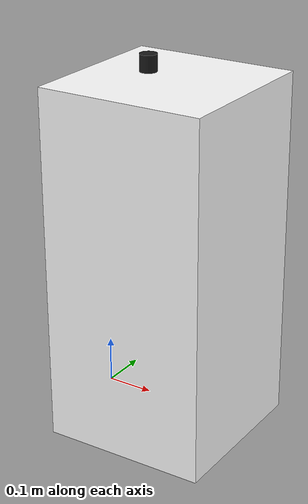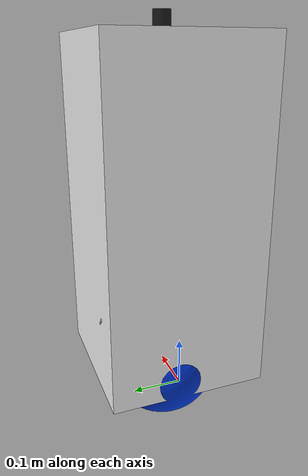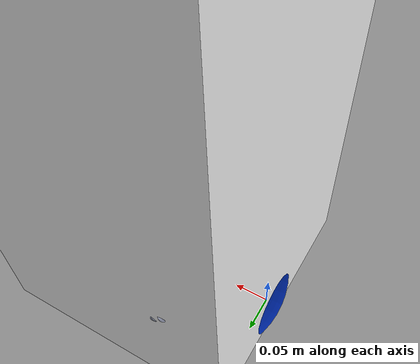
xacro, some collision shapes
<?xml version="1.0" encoding="utf-8"?>
<robot name="ballbot_gp" xmlns:xacro="http://ros.org/wiki/xacro">

  <!-- ── Gazebo Harmonic properties (materials, sensors, plugins) -->
  <xacro:include filename="$(find gp_description)/urdf/ballbot1_gazebo.xacro"/>

  <!-- ── ros2_control hardware interface -->
  <xacro:include filename="$(find gp_description)/urdf/ballbot1_ros2_control.xacro"/>

>
  <xacro:property name="ball_radius"      value="0.125"/>
  <xacro:property name="ball_center_sw_y" value="-0.10347"/>

  <xacro:property name="footprint_z"      value="0.02153"/>

  <!-- Lidar mounting position relative to base_link origin -->
  <xacro:property name="lidar_x" value="0.0"/>
  <xacro:property name="lidar_y" value="${ball_center_sw_y}"/>  <!-- -0.10347: centres lidar over ball/body -->
  <xacro:property name="lidar_z" value="0.73"/>                 <!-- tune to your top-plate mount height -->

  <material name="white"> <color rgba="1.0 1.0 1.0 1"/>       </material>
  <material name="grey">  <color rgba="0.792 0.820 0.933 1"/> </material>
  <material name="blue">  <color rgba="0.0 0.2 0.8 1"/>       </material>
  <material name="black"> <color rgba="0.1 0.1 0.1 1"/>       </material>

  <link name="base_footprint"/>

  <joint name="base_footprint_joint" type="fixed">
    <origin xyz="0.0 0.0 0.0" rpy="0 0.0 1.5708"/>
    <parent link="base_footprint"/>
    <child link="base_link"/>
  </joint>

  <link name="base_link">
    <inertial>
      <!-- Exact SolidWorks values in CS1 frame -->
      <origin xyz="-0.0244718192905085 -0.16334056096161 0.339920868191446"
              rpy="0 0 0"/>
      <mass value="9.07275285865356"/>
      <inertia
        ixx="0.0571612932870479"
        ixy="-0.000456309676936411"
        ixz="0.00199037168846741"
        iyy="0.0565565469848635"
        iyz="0.006268892745692"
        izz="0.0280267227719207"/>
    </inertial>
    <visual>
      <origin xyz="0 0 0" rpy="0 0 0"/>
      <geometry>
        <mesh filename="package://gp_description/meshes/base_link.STL"/>
      </geometry>
      <material name="white"/>
    </visual>
    <collision>
      <!-- Box approximation centred at CoM — faster physics -->
      <origin xyz="-0.024 -0.163 0.340" rpy="0 0 0"/>
      <geometry>
        <box size="0.35 0.35 0.75"/>
      </geometry>
    </collision>
  </link>

<link name="Sphere">
  <inertial>
    <origin xyz="0 0 0" rpy="0 0 0"/>
    <mass value="5.0"/>
    <inertia ixx="0.03125" ixy="0.0" ixz="0.0"
                           iyy="0.03125" iyz="0.0"
                                         izz="0.03125"/>
  </inertial>
  <visual>
    <origin xyz="0 0 0" rpy="0 0 0"/>
    <geometry>
      <mesh filename="package://gp_description/meshes/Sphere.STL"/>
    </geometry>
    <material name="blue"/>
  </visual>
  <collision>
    <origin xyz="0 0 0" rpy="0 0 0"/>
    <geometry>
      <sphere radius="0.125"/>
    </geometry>
  </collision>
</link>

  <joint name="Sphere_joint" type="fixed">
    <origin xyz="0.0 0.0 0.0" rpy="0.0 0.0 0.0"/>
    <parent link="base_link"/>
    <child link="Sphere"/>
  </joint>

  <!-- ══════════════════════════════════════════════════════════════
       WHEEL 1
  ══════════════════════════════════════════════════════════════ -->
  <link name="wheel1">
    <inertial>
      <origin xyz="-0.00953560838271306 5.16370524039633E-05 6.79506333374214E-05"
              rpy="0 0 0"/>
      <mass value="0.0951143292904165"/>
      <inertia
        ixx="4.6564668190044E-05"
        ixy="-1.13818252980688E-11"
        ixz="-1.07929018946086E-12"
        iyy="2.52584891025195E-05"
        iyz="-1.47477859092718E-10"
        izz="2.52591526237752E-05"/>
    </inertial>
    <visual>
      <origin xyz="0 0 0" rpy="0 0 0"/>
      <geometry>
        <mesh filename="package://gp_description/meshes/wheel1.STL"/>
      </geometry>
      <material name="grey"/>
    </visual>
    <collision>
      <origin xyz="0 0 0" rpy="0 1.5708 0"/>
      <geometry>
        <cylinder radius="0.05" length="0.04"/>
      </geometry>
    </collision>
  </link>

  <joint name="wheel1_joint" type="continuous">
    <origin xyz="-0.13414 -0.062275 0.10542" rpy="3.1416 0.72885 2.467"/>
    <parent link="base_link"/>
    <child link="wheel1"/>
    <axis xyz="-1 0 0"/>
    <limit effort="8.9" velocity="41.9"/>
    <dynamics damping="0.5" friction="0.5"/>
  </joint>

  <!-- ══════════════════════════════════════════════════════════════
       WHEEL 2
  ══════════════════════════════════════════════════════════════ -->
  <link name="wheel2">
    <inertial>
      <origin xyz="-0.00953560990942437 3.71902770001376E-05 -7.68172329360661E-05"
              rpy="0 0 0"/>
      <mass value="0.095114303083539"/>
      <inertia
        ixx="4.65646613426974E-05"
        ixy="3.84563052393366E-12"
        ixz="1.11453090451415E-11"
        iyy="2.52591401581312E-05"
        iyz="-1.81644499125135E-10"
        izz="2.52584940578476E-05"/>
    </inertial>
    <visual>
      <origin xyz="0 0 0" rpy="0 0 0"/>
      <geometry>
        <mesh filename="package://gp_description/meshes/wheel2.STL"/>
      </geometry>
      <material name="grey"/>
    </visual>
    <collision>
      <origin xyz="0 0 0" rpy="0 1.5708 0"/>
      <geometry>
        <cylinder radius="0.05" length="0.04"/>
      </geometry>
    </collision>
  </link>

  <joint name="wheel2_joint" type="continuous">
    <origin xyz="-0.00036169 -0.26357 0.071949" rpy="3.1416 0.98464 -1.4141"/>
    <parent link="base_link"/>
    <child link="wheel2"/>
    <axis xyz="-1 0 0"/>
    <limit effort="8.9" velocity="41.9"/>
    <dynamics damping="0.5" friction="0.5"/>
  </joint>

  <!-- ══════════════════════════════════════════════════════════════
       WHEEL 3
  ══════════════════════════════════════════════════════════════ -->
  <link name="wheel3">
    <inertial>
      <origin xyz="-0.0095356 -5.2218E-05 -6.7507E-05" rpy="0 0 0"/>
      <mass value="0.095114"/>
      <inertia
        ixx="4.6565E-05" ixy="1.147E-11"  ixz="1.4905E-12"
                         iyy="2.5258E-05"  iyz="-1.4505E-10"
                                           izz="2.5259E-05"/>
    </inertial>
    <visual>
      <origin xyz="0 0 0" rpy="0 0 0"/>
      <geometry>
        <mesh filename="package://gp_description/meshes/wheel3.STL"/>
      </geometry>
      <material name="grey"/>
    </visual>
    <collision>
      <origin xyz="0 0 0" rpy="0 1.5708 0"/>
      <geometry>
        <cylinder radius="0.05" length="0.04"/>
      </geometry>
    </collision>
  </link>

  <joint name="wheel3_joint" type="continuous">
    <origin xyz="0.11857 -0.045415 0.11596" rpy="-2.708 0.6093 0.68015"/>
    <parent link="base_link"/>
    <child link="wheel3"/>
    <axis xyz="-1 0 0"/>
    <limit effort="8.9" velocity="41.9"/>
    <dynamics damping="0.5" friction="0.5"/>
  </joint>

  <link name="laser_link">
    <inertial>
      <origin xyz="0 0 0" rpy="0 0 0"/>
      <mass value="0.073"/>
      <inertia ixx="1.0E-05" ixy="0" ixz="0"
                             iyy="1.0E-05" iyz="0"
                                           izz="1.0E-05"/>
    </inertial>
    <visual>
      <origin xyz="0 0 0" rpy="0 0 0"/>
      <geometry>
        <!-- Cylinder representing the LD06 body -->
        <cylinder radius="0.018" length="0.04"/>
      </geometry>
      <material name="black"/>
    </visual>
    <collision>
      <origin xyz="0 0 0" rpy="0 0 0"/>
      <geometry>
        <cylinder radius="0.018" length="0.04"/>
      </geometry>
    </collision>
  </link>

  <joint name="laser_joint" type="fixed">
    <origin xyz="${lidar_x} ${lidar_y} ${lidar_z}" rpy="0 0 3.1416"/>
    <parent link="base_link"/>
    <child link="laser_link"/>
  </joint>

</robot>
